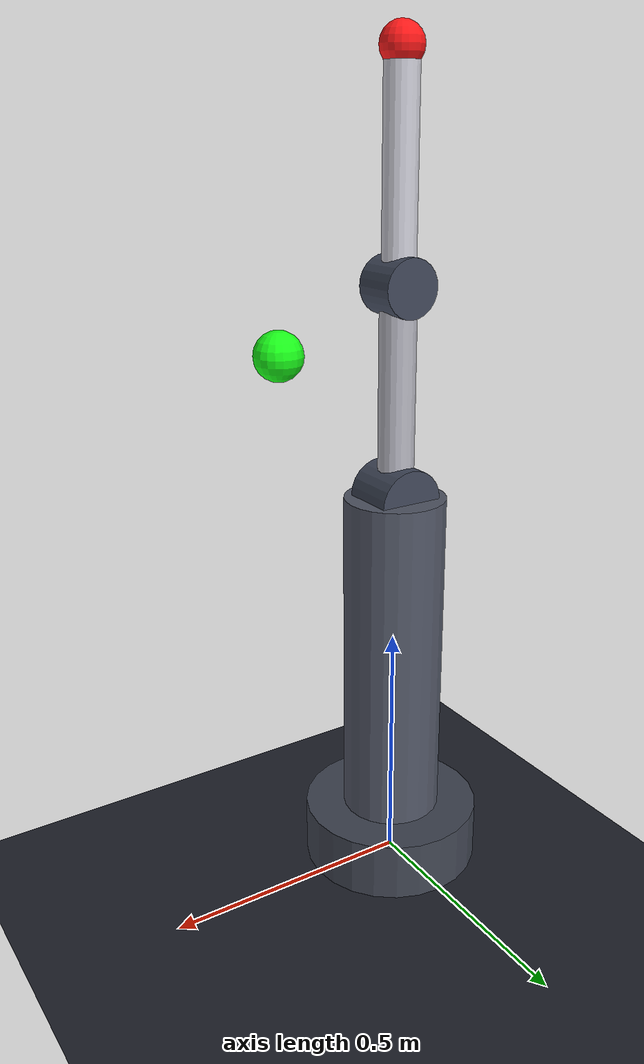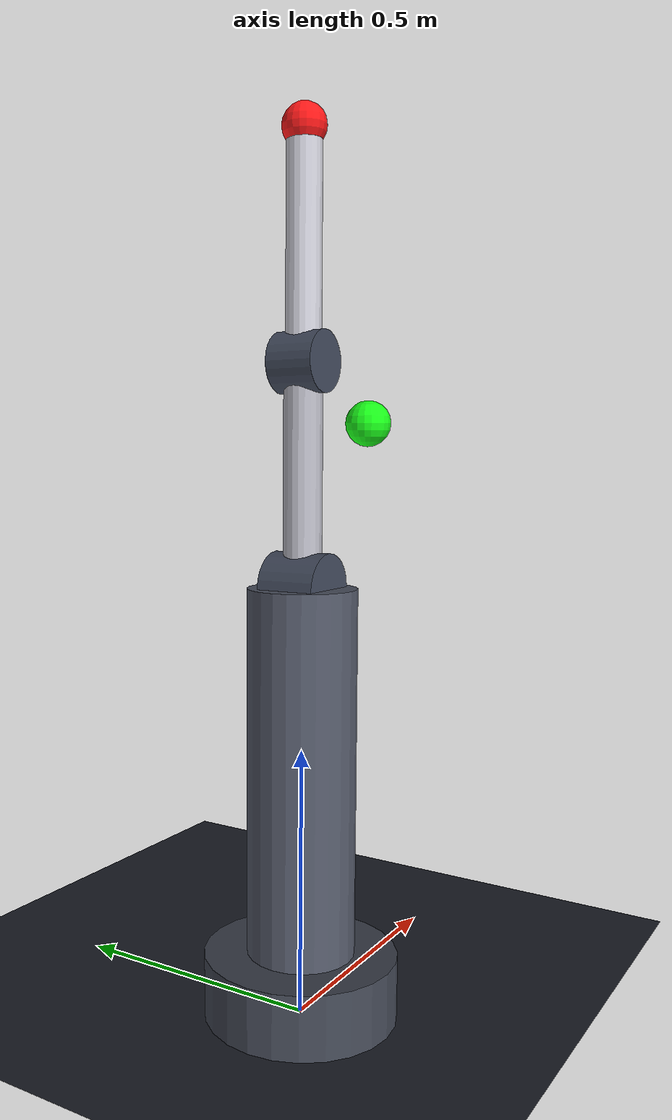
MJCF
<mujoco model="stable_planar_2dof">

  <!-- Углы в XML задаются в градусах -->
  <compiler angle="degree" autolimits="true"/>

  <!-- Небольшой timestep и устойчивый решатель -->
  <option timestep="0.002"
          integrator="RK4"
          solver="Newton"
          iterations="100"
          tolerance="1e-10"
          gravity="0 0 -9.81"/>

  <!-- Общие параметры модели -->
  <default>
    <!--
      damping гасит колебания;
      armature добавляет небольшую инерцию привода;
      frictionloss уменьшает свободное раскачивание.
    -->
    <joint limited="true"
           damping="3.0"
           armature="0.04"
           frictionloss="0.08"/>

    <!-- Коллизии отключены: для этой RL-задачи они не нужны -->
    <geom density="350"
          contype="0"
          conaffinity="0"
          rgba="0.72 0.72 0.76 1"/>
  </default>

  <visual>
    <headlight ambient="0.35 0.35 0.35"
               diffuse="0.75 0.75 0.75"
               specular="0.15 0.15 0.15"/>
  </visual>

  <worldbody>

    <!-- Пол только для визуального ориентира -->
    <geom name="floor"
          type="plane"
          pos="0 0 0"
          size="3 3 0.1"
          rgba="0.12 0.13 0.17 1"
          contype="0"
          conaffinity="0"/>

    <!-- Камера смотрит на плоскость XZ -->
    <camera name="main_camera"
            pos="1.8 -3.0 1.4"
            xyaxes="1 0 0 0 0.35 0.94"/>

    <!-- Зелёная цель; Python меняет её позицию при reset() -->
    <site name="target"
          pos="0.25 0 1.10"
          size="0.045"
          rgba="0.1 1 0.1 1"/>

    <!-- Неподвижное основание -->
    <body name="base" pos="0 0 0">

      <!-- Нижняя платформа -->
      <geom name="base_plate"
            type="cylinder"
            pos="0 0 0.06"
            size="0.18 0.06"
            density="1000"
            rgba="0.25 0.27 0.32 1"/>

      <!-- Вертикальная стойка -->
      <geom name="pedestal"
            type="cylinder"
            pos="0 0 0.43"
            size="0.10 0.37"
            density="900"
            rgba="0.32 0.34 0.40 1"/>

      <!-- Первый подвижный body находится сверху стойки -->
      <body name="link1_body" pos="0 0 0.80">

        <!-- Вращение вокруг Y => движение только в плоскости XZ -->
        <joint name="joint1"
               type="hinge"
               axis="0 1 0"
               range="-120 120"/>

        <!-- Визуальный корпус первого шарнира -->
        <geom name="joint1_housing"
              type="cylinder"
              pos="0 0 0"
              quat="0.7071068 0.7071068 0 0"
              size="0.065 0.055"
              density="500"
              rgba="0.25 0.28 0.35 1"/>

        <!-- Первое звено: 0.40 м -->
        <geom name="link1"
              type="capsule"
              fromto="0 0 0 0 0 0.40"
              size="0.035"
              density="350"
              rgba="0.72 0.72 0.76 1"/>

        <!-- Второй сустав на конце первого звена -->
        <body name="link2_body" pos="0 0 0.40">

          <joint name="joint2"
                 type="hinge"
                 axis="0 1 0"
                 range="-150 150"/>

          <geom name="joint2_housing"
                type="cylinder"
                pos="0 0 0"
                quat="0.7071068 0.7071068 0 0"
                size="0.055 0.045"
                density="450"
                rgba="0.25 0.28 0.35 1"/>

          <!-- Второе звено: 0.40 м -->
          <geom name="link2"
                type="capsule"
                fromto="0 0 0 0 0 0.40"
                size="0.032"
                density="320"
                rgba="0.82 0.82 0.86 1"/>

          <!-- Красный end-effector -->
          <site name="ee_site"
                pos="0 0 0.40"
                size="0.040"
                rgba="1 0.1 0.1 1"/>

        </body>
      </body>
    </body>
  </worldbody>

  <actuator>
    <position name="m1"
              joint="joint1"
              kp="45"
              ctrllimited="true"
              ctrlrange="-2.0944 2.0944"
              forcelimited="true"
              forcerange="-18 18"/>

    <position name="m2"
              joint="joint2"
              kp="35"
              ctrllimited="true"
              ctrlrange="-2.6180 2.6180"
              forcelimited="true"
              forcerange="-12 12"/>
  </actuator>

</mujoco>
